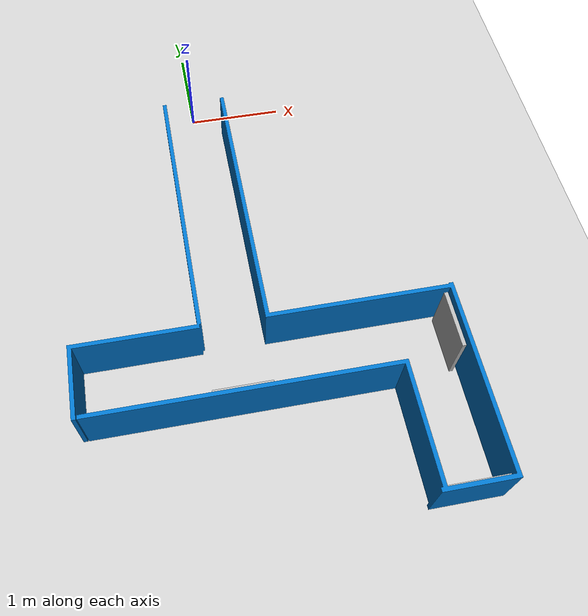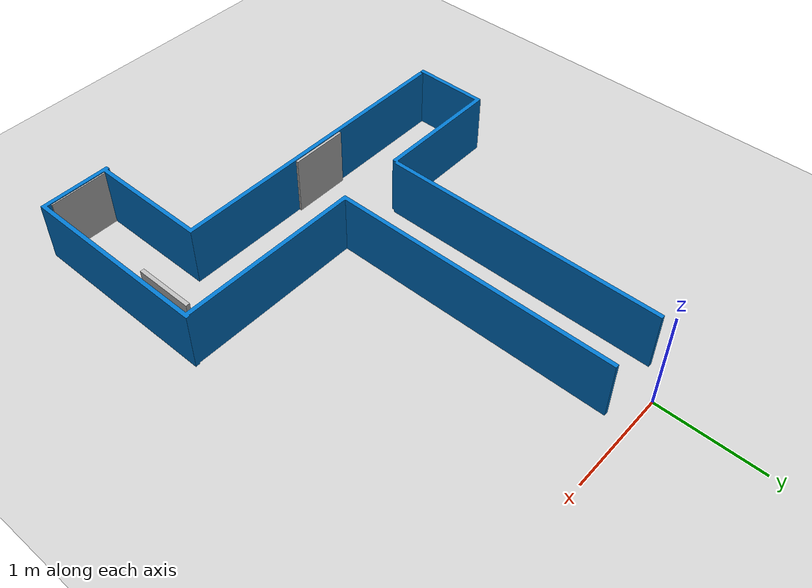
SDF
<sdf version="1.7">
 <world name="default">
  <light name="sun" type="directional">
   <pose>0 0 10 0 -0 0</pose>
   <diffuse>0.8 0.8 0.8 1</diffuse>
   <specular>0.2 0.2 0.2 1</specular>
   <attenuation>
    <range>1000</range>
    <constant>0.9</constant>
    <linear>0.01</linear>
    <quadratic>0.001</quadratic>
   </attenuation>
   <direction>-0.5 0.1 -0.9</direction>
   <spot><inner_angle>0</inner_angle><outer_angle>0</outer_angle><falloff>0</falloff></spot>
  </light>
  <model name="ground_plane">
   <static>1</static>
   <link name="link">
    <collision name="collision">
     <geometry><plane><normal>0 0 1</normal><size>100 100</size></plane></geometry>
     <surface>
      <contact><collide_bitmask>65535</collide_bitmask></contact>
      <friction><ode><mu>100</mu><mu2>50</mu2></ode></friction>
     </surface>
    </collision>
    <visual name="visual">
     <cast_shadows>0</cast_shadows>
     <geometry><plane><normal>0 0 1</normal><size>100 100</size></plane></geometry>
     <material>
      <script><uri>file://media/materials/scripts/gazebo.material</uri><name>Gazebo/Grey</name></script>
     </material>
    </visual>
   </link>
  </model>
  <gravity>0 0 -9.8</gravity>
  <magnetic_field>6e-06 2.3e-05 -4.2e-05</magnetic_field>
  <atmosphere type="adiabatic"/>
  <physics type="ode">
   <max_step_size>0.001</max_step_size>
   <real_time_factor>1</real_time_factor>
   <real_time_update_rate>1000</real_time_update_rate>
  </physics>
  <scene><ambient>0.4 0.4 0.4 1</ambient><background>0.7 0.7 0.7 1</background><shadows>1</shadows></scene>
  <audio><device>default</device></audio>
  <spherical_coordinates>
   <surface_model>EARTH_WGS84</surface_model>
   <latitude_deg>0</latitude_deg>
   <longitude_deg>0</longitude_deg>
   <elevation>0</elevation>
   <heading_deg>0</heading_deg>
  </spherical_coordinates>
  <model name="MazeQrCodes">
   <link name="link_0">
    <inertial>
     <mass>1</mass>
     <inertia>
      <ixx>0.166667</ixx>
      <ixy>0</ixy>
      <ixz>0</ixz>
      <iyy>0.166667</iyy>
      <iyz>0</iyz>
      <izz>0.166667</izz>
     </inertia>
    </inertial>
    <pose>0.000674 -0.000534 0 0 -0 0</pose>
    <visual name="visual">
     <geometry>
      <mesh>
       <uri>/home/vardhman/ros2_car_ws/src/ROS2-RPi-intelligent-Vision-Robot/vision_rpi_bot/meshes/MAZE.dae</uri>
       <scale>1 1 1</scale>
      </mesh>
     </geometry>
    </visual>
    <collision name="collision">
     <geometry>
      <mesh>
       <uri>/home/vardhman/ros2_car_ws/src/ROS2-RPi-intelligent-Vision-Robot/vision_rpi_bot/meshes/MAZE.dae</uri>
       <scale>1 1 1</scale>
      </mesh>
     </geometry>
     <surface>
      <friction>
       <ode><mu>1</mu><mu2>1</mu2><fdir1>0 0 0</fdir1><slip1>0</slip1><slip2>0</slip2></ode>
       <torsional>
        <coefficient>1</coefficient>
        <patch_radius>0</patch_radius>
        <surface_radius>0</surface_radius>
        <use_patch_radius>1</use_patch_radius>
        <ode><slip>0</slip></ode>
       </torsional>
      </friction>
      <bounce><restitution_coefficient>0</restitution_coefficient><threshold>1e+06</threshold></bounce>
      <contact>
       <collide_without_contact>0</collide_without_contact>
       <collide_without_contact_bitmask>1</collide_without_contact_bitmask>
       <collide_bitmask>1</collide_bitmask>
       <ode>
        <soft_cfm>0</soft_cfm>
        <soft_erp>0.2</soft_erp>
        <kp>1e+13</kp>
        <kd>1</kd>
        <max_vel>0.01</max_vel>
        <min_depth>0</min_depth>
       </ode>
       <bullet>
        <split_impulse>1</split_impulse>
        <split_impulse_penetration_threshold>-0.01</split_impulse_penetration_threshold>
        <soft_cfm>0</soft_cfm>
        <soft_erp>0.2</soft_erp>
        <kp>1e+13</kp>
        <kd>1</kd>
       </bullet>
      </contact>
     </surface>
    </collision>
   </link>
   <link name="link_1">
    <inertial>
     <mass>1</mass>
     <inertia>
      <ixx>0.166667</ixx>
      <ixy>0</ixy>
      <ixz>0</ixz>
      <iyy>0.166667</iyy>
      <iyz>0</iyz>
      <izz>0.166667</izz>
     </inertia>
    </inertial>
    <pose>-0.000674 0.000534 0 0 -0 0</pose>
    <visual name="visual">
     <geometry>
      <mesh>
       <uri>/home/vardhman/ros2_car_ws/src/ROS2-RPi-intelligent-Vision-Robot/vision_rpi_bot/meshes/QrCodes.dae</uri>
       <scale>1 1 1</scale>
      </mesh>
     </geometry>
    </visual>
    <collision name="collision">
     <geometry>
      <mesh>
       <uri>/home/vardhman/ros2_car_ws/src/ROS2-RPi-intelligent-Vision-Robot/vision_rpi_bot/meshes/QrCodes.dae</uri>
       <scale>1 1 1</scale>
      </mesh>
     </geometry>
     <surface>
      <friction>
       <ode><mu>1</mu><mu2>1</mu2><fdir1>0 0 0</fdir1><slip1>0</slip1><slip2>0</slip2></ode>
       <torsional>
        <coefficient>1</coefficient>
        <patch_radius>0</patch_radius>
        <surface_radius>0</surface_radius>
        <use_patch_radius>1</use_patch_radius>
        <ode><slip>0</slip></ode>
       </torsional>
      </friction>
      <bounce><restitution_coefficient>0</restitution_coefficient><threshold>1e+06</threshold></bounce>
      <contact>
       <collide_without_contact>0</collide_without_contact>
       <collide_without_contact_bitmask>1</collide_without_contact_bitmask>
       <collide_bitmask>1</collide_bitmask>
       <ode>
        <soft_cfm>0</soft_cfm>
        <soft_erp>0.2</soft_erp>
        <kp>1e+13</kp>
        <kd>1</kd>
        <max_vel>0.01</max_vel>
        <min_depth>0</min_depth>
       </ode>
       <bullet>
        <split_impulse>1</split_impulse>
        <split_impulse_penetration_threshold>-0.01</split_impulse_penetration_threshold>
        <soft_cfm>0</soft_cfm>
        <soft_erp>0.2</soft_erp>
        <kp>1e+13</kp>
        <kd>1</kd>
       </bullet>
      </contact>
     </surface>
    </collision>
   </link>
   <static>1</static>
   <pose>0.010305 -0.041202 0 0 -0 0</pose>
  </model>
  <light name="user_point_light_0" type="point">
   <pose>1.14123 -2.41233 1 0 -0 0</pose>
   <diffuse>0.5 0.5 0.5 1</diffuse>
   <specular>0.1 0.1 0.1 1</specular>
   <attenuation>
    <range>20</range>
    <constant>0.5</constant>
    <linear>0.01</linear>
    <quadratic>0.001</quadratic>
   </attenuation>
   <cast_shadows>0</cast_shadows>
   <direction>0 0 -1</direction>
  </light>
 </world>
</sdf>
